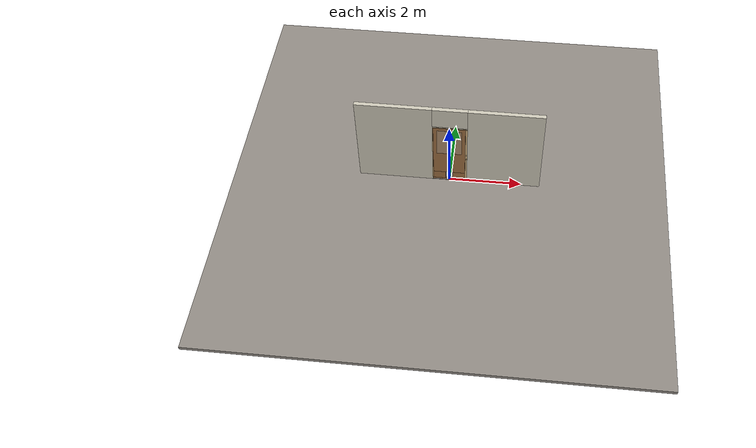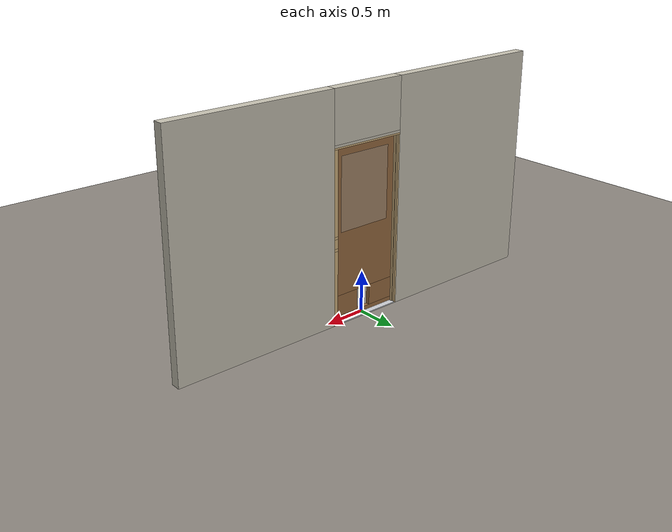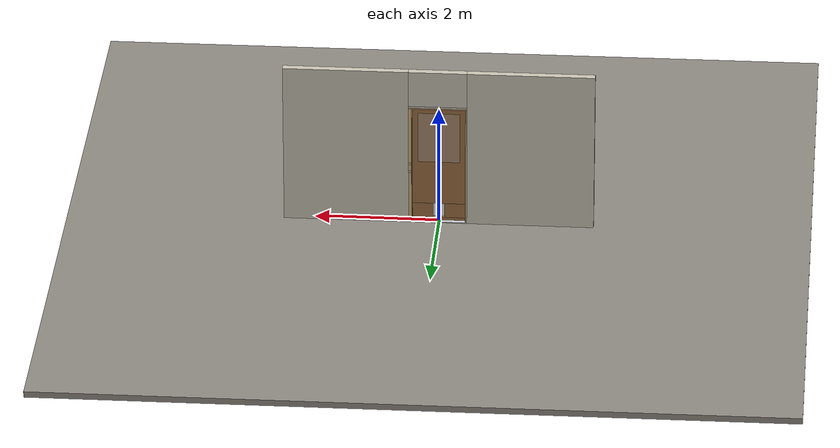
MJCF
<?xml version="1.0" ?>
<mujoco model="db0725_swing_single_minimal">
  <compiler angle="radian" meshdir="../../hardware" texturedir="../../textures" autolimits="true" inertiafromgeom="false"/>
  <option timestep="0.002" integrator="implicitfast" cone="elliptic" impratio="10" noslip_iterations="3">
    <flag multiccd="enable"/>
  </option>
  <size memory="16M"/>
  <default>
    <geom condim="4" solref="0.005 1" solimp="0.95 0.99 0.001"/>
    <joint solreflimit="0.005 1" solimplimit="0.95 0.99 0.001"/>
    <tendon solreflimit="0.005 1"/>
    <equality solref="0.002 1"/>
  </default>
  <visual>
    <headlight ambient="0.4 0.4 0.4" diffuse="0.7 0.7 0.7" specular="0.2 0.2 0.2"/>
    <quality shadowsize="4096"/>
    <map znear="0.01" zfar="60"/>
  </visual>
  <asset>
    <material name="mat_floor" rgba="0.55 0.53 0.5 1" specular="0.2" shininess="0.15" reflectance="0"/>
    <material name="mat_wall" rgba="0.78 0.76 0.7 1" specular="0.2" shininess="0.1" reflectance="0"/>
    <material name="mat_leaf" rgba="0.6 0.42 0.25 1" specular="0.2" shininess="0.6" reflectance="0"/>
    <material name="mat_glass" rgba="0.85 0.92 0.95 0.25" specular="0.2" shininess="0.95" reflectance="0.1"/>
    <material name="mat_hinge" rgba="0.65 0.66 0.68 1" specular="0.74" shininess="0.5" reflectance="0.36"/>
    <material name="mat_op_nickel_satin" rgba="0.72 0.7 0.66 1" specular="0.8" shininess="0.65" reflectance="0.4"/>
    <material name="mat_trim" rgba="0.85 0.66 0.3 1" specular="0.8" shininess="0.75" reflectance="0.4"/>
    <material name="mat_keypad" rgba="0.05 0.05 0.05 1" specular="0.38" shininess="0.3" reflectance="0.12"/>
    <material name="mat_key" rgba="0.85 0.85 0.82 1" specular="0.2" shininess="0.5" reflectance="0"/>
    <material name="mat_bolt" rgba="0.85 0.66 0.3 1" specular="0.8" shininess="0.75" reflectance="0.4"/>
    <material name="mat_deadbolt" rgba="0.85 0.66 0.3 1" specular="0.8" shininess="0.75" reflectance="0.4"/>
    <material name="mat_frame" rgba="0.82 0.7 0.5 1" specular="0.2" shininess="0.45" reflectance="0"/>
    <material name="mat_seal" rgba="0.1 0.1 0.1 1" specular="0.2" shininess="0.1" reflectance="0"/>
    <material name="mat_threshold" rgba="0.8 0.81 0.83 1" specular="0.8" shininess="0.6" reflectance="0.4"/>
    <material name="mat_numbers" rgba="0.05 0.05 0.05 1" specular="0.38" shininess="0.3" reflectance="0.12"/>
    <material name="mat_sidelite" rgba="0.85 0.92 0.95 0.25" specular="0.2" shininess="0.95" reflectance="0.1"/>
    <material name="mat_petframe" rgba="0.92 0.92 0.9 1" specular="0.2" shininess="0.6" reflectance="0"/>
    <material name="mat_petflap" rgba="0.85 0.9 0.95 0.45" specular="0.2" shininess="0.7" reflectance="0.1"/>
    <texture name="skybox" type="skybox" builtin="gradient" rgb1="0.6 0.7 0.85" rgb2="0.9 0.92 0.95" width="256" height="256"/>
  </asset>
  <worldbody>
    <light name="sun" pos="1.5 -2.5 4" dir="-0.3 0.5 -0.8" directional="true" diffuse="0.8 0.8 0.8" specular="0.3 0.3 0.3" castshadow="true"/>
    <light name="fill" pos="-1.5 2.5 3" dir="0.3 -0.5 -0.7" directional="true" diffuse="0.35 0.35 0.4" castshadow="false"/>
    <camera name="robot_view" pos="0 -2.513687 1.734312" xyaxes="1 0 0 0 0.26963 0.962964" fovy="52"/>
    <camera name="far_view" pos="0 2.570688 1.734312" xyaxes="-1 0 0 0 -0.26963 0.962964" fovy="52"/>
    <camera name="iso" pos="1.932062 -2.106937 2.141063" xyaxes="0.741536 0.670913 0 -0.242917 0.268487 0.932151" fovy="46"/>
    <camera name="detail_handle" pos="0.508 -0.7715 1.194" xyaxes="0.97561 0.219512 0 -0.070934 0.315262 0.94635" fovy="38"/>
    <geom name="floor" type="box" size="6 6 0.05" pos="0 0 -0.05" material="mat_floor" group="0" contype="1" conaffinity="1" friction="0.8 0.005 0.0001" density="2400"/>
    <geom name="wall_left" type="box" size="1.0225 0.0575 1.35" pos="-1.4775 0.0285 1.35" material="mat_wall" group="0" contype="1" conaffinity="1" friction="0.6 0.005 0.0001" density="800"/>
    <geom name="wall_right" type="box" size="1.0075 0.0575 1.35" pos="1.4925 0.0285 1.35" material="mat_wall" group="0" contype="1" conaffinity="1" friction="0.6 0.005 0.0001" density="800"/>
    <geom name="wall_header" type="box" size="0.47 0.0575 0.303" pos="0.015 0.0285 2.397" material="mat_wall" group="0" contype="1" conaffinity="1" friction="0.6 0.005 0.0001" density="800"/>
    <geom name="jamb_hinge" type="box" size="0.0095 0.0575 1.0225" pos="-0.4455 0.0285 1.0225" material="mat_frame" group="0" contype="1" conaffinity="1" friction="0.6 0.005 0.0001" density="400"/>
    <geom name="strike_914_wall_n" type="box" size="0.0245 0.039075 0.0167" pos="0.4605 0.046925 0.914" material="mat_frame" group="0" contype="1" conaffinity="1" friction="0.6 0.005 0.0001" density="400"/>
    <geom name="strike_914_wall_p" type="box" size="0.0245 0.008 0.0167" pos="0.4605 -0.01585 0.914" material="mat_frame" group="0" contype="1" conaffinity="1" friction="0.6 0.005 0.0001" density="400"/>
    <geom name="strike_914_ramp" type="box" size="0.0245 0.01649 0.0167" pos="0.465136 -0.028673 0.914" quat="0.977148 0 0 0.212558" material="mat_frame" group="0" contype="1" conaffinity="1" friction="0.12 0.005 0.0001" density="400"/>
    <geom name="strike_914_back" type="box" size="0.01615 0.00785 0.0167" pos="0.46885 0 0.914" material="mat_frame" group="0" contype="1" conaffinity="1" friction="0.6 0.005 0.0001" density="400"/>
    <geom name="strike_1054_wall_n" type="box" size="0.0245 0.03825 0.0155" pos="0.4605 0.04775 1.054" material="mat_frame" group="0" contype="1" conaffinity="1" friction="0.6 0.005 0.0001" density="400"/>
    <geom name="strike_1054_wall_p" type="box" size="0.0245 0.00975 0.0155" pos="0.4605 -0.01925 1.054" material="mat_frame" group="0" contype="1" conaffinity="1" friction="0.6 0.005 0.0001" density="400"/>
    <geom name="strike_1054_back" type="box" size="0.0098 0.0095 0.0155" pos="0.4752 0 1.054" material="mat_frame" group="0" contype="1" conaffinity="1" friction="0.6 0.005 0.0001" density="400"/>
    <geom name="jamb_strike_0" type="box" size="0.0245 0.0575 0.44865" pos="0.4605 0.0285 0.44865" material="mat_frame" group="0" contype="1" conaffinity="1" friction="0.6 0.005 0.0001" density="400"/>
    <geom name="jamb_strike_1" type="box" size="0.0245 0.0575 0.0539" pos="0.4605 0.0285 0.9846" material="mat_frame" group="0" contype="1" conaffinity="1" friction="0.6 0.005 0.0001" density="400"/>
    <geom name="jamb_strike_2" type="box" size="0.0245 0.0575 0.48775" pos="0.4605 0.0285 1.55725" material="mat_frame" group="0" contype="1" conaffinity="1" friction="0.6 0.005 0.0001" density="400"/>
    <geom name="jamb_head" type="box" size="0.47 0.0575 0.0095" pos="0.015 0.0285 2.0545" material="mat_frame" group="0" contype="1" conaffinity="1" friction="0.6 0.005 0.0001" density="400"/>
    <geom name="head_stud" type="box" size="0.47 0.0575 0.015" pos="0.015 0.0285 2.079" material="mat_wall" group="0" contype="1" conaffinity="1" friction="0.6 0.005 0.0001" density="500"/>
    <geom name="stop_hinge" type="box" size="0.0055 0.016 1.0225" pos="-0.4305 0.0385 1.0225" material="mat_frame" group="0" contype="1" conaffinity="1" friction="0.6 0.005 0.0001" density="400"/>
    <geom name="stop_strike" type="box" size="0.0055 0.016 1.0225" pos="0.4305 0.0385 1.0225" material="mat_frame" group="0" contype="1" conaffinity="1" friction="0.6 0.005 0.0001" density="400"/>
    <geom name="stop_head" type="box" size="0.436 0.016 0.0055" pos="0 0.0385 2.0395" material="mat_frame" group="0" contype="1" conaffinity="1" friction="0.6 0.005 0.0001" density="400"/>
    <geom name="threshold" type="box" size="0.455 0.0575 0.0065" pos="0 0.0285 0.0065" material="mat_threshold" group="0" contype="1" conaffinity="1" friction="0.5 0.005 0.0001" density="2700"/>
    <site name="approach_point" pos="0 -1.5 0" quat="1 0 0 0" size="0.05" rgba="0.2 0.9 0.2 0.5" group="4"/>
    <site name="goal_point" pos="0 1.5 0" quat="1 0 0 0" size="0.05" rgba="0.2 0.9 0.2 0.5" group="4"/>
    <site name="door_plane_center" pos="0 0 1.0225" quat="1 0 0 0" size="0.02" rgba="0.2 0.9 0.2 0.5" group="4"/>
    <body name="leaf" pos="-0.436 0 0">
      <inertial pos="0.435 0 1.051906" mass="46.373021" quat="0.5 -0.5 -0.5 -0.5" diaginertia="2.965539597 15.357239056 18.307814737"/>
      <joint name="leaf_hinge" type="hinge" axis="0 0 -1" pos="0.003 -0.029 0" limited="true" range="0 1.745329" solreflimit="0.02 1" damping="0.254501" frictionloss="6.629312" armature="0.02"/>
      <geom name="leaf_slab_below" type="box" size="0.432 0.022 0.0245" pos="0.435 0 0.0415" material="mat_leaf" group="0" contype="1" conaffinity="1" friction="0.3 0.005 0.0001" density="1"/>
      <geom name="leaf_slab_above" type="box" size="0.432 0.022 0.8615" pos="0.435 0 1.1795" material="mat_leaf" group="0" contype="1" conaffinity="1" friction="0.3 0.005 0.0001" density="1"/>
      <geom name="leaf_slab_left" type="box" size="0.1705 0.022 0.126" pos="0.1735 0 0.192" material="mat_leaf" group="0" contype="1" conaffinity="1" friction="0.3 0.005 0.0001" density="1"/>
      <geom name="leaf_slab_right" type="box" size="0.1705 0.022 0.126" pos="0.6965 0 0.192" material="mat_leaf" group="0" contype="1" conaffinity="1" friction="0.3 0.005 0.0001" density="1"/>
      <geom name="leaf_glass_0" type="box" size="0.33696 0.0228 0.43516" pos="0.435 0 1.50464" material="mat_glass" group="1" contype="0" conaffinity="0" density="1"/>
      <site name="leaf_edge_mid" pos="0.867 0 1.012" quat="1 0 0 0" size="0.02" rgba="0.2 0.9 0.2 0.5" group="4"/>
      <body name="leaf_handle" pos="0.797 0 0.914">
        <inertial pos="0 0 0" mass="0.01" quat="1 0 0 0" diaginertia="0.000001 0.000001 0.000001"/>
        <joint name="leaf_handle_hinge" type="hinge" axis="0 -1 0" limited="true" range="0 0.87" damping="0.141426" frictionloss="0.048" stiffness="0.5" springref="-0.5" armature="0.01"/>
      </body>
      <body name="leaf_latch_bolt" pos="0.867 0 0.914">
        <inertial pos="-0.00865 0 0" mass="0.041419" quat="0.92388 -0.382683 0 0" diaginertia="0.000000798 0.000005598 0.000005598"/>
        <joint name="leaf_latch_bolt_slide" type="slide" axis="-1 0 0" limited="true" range="0 0.0127" damping="2" frictionloss="0.3" stiffness="300" springref="-0.008333" armature="0.1"/>
        <geom name="leaf_latch_bolt_capsule" type="capsule" size="0.00635 0.015" pos="-0.00865 0 0" quat="0.707107 0 0.707107 0" material="mat_bolt" group="0" contype="1" conaffinity="1" friction="0.2 0.005 0.0001" density="8500"/>
      </body>
    </body>
  </worldbody>
  <tendon>
    <fixed name="leaf_latch_bolt_coupling" limited="true" range="0 10">
      <joint joint="leaf_latch_bolt_slide" coef="1"/>
      <joint joint="leaf_handle_hinge" coef="-0.015679"/>
    </fixed>
  </tendon>
  <sensor>
    <jointpos name="leaf_hinge_pos" joint="leaf_hinge"/>
    <jointvel name="leaf_hinge_vel" joint="leaf_hinge"/>
    <jointpos name="leaf_handle_hinge_pos" joint="leaf_handle_hinge"/>
    <jointvel name="leaf_handle_hinge_vel" joint="leaf_handle_hinge"/>
    <jointpos name="leaf_latch_bolt_slide_pos" joint="leaf_latch_bolt_slide"/>
    <jointvel name="leaf_latch_bolt_slide_vel" joint="leaf_latch_bolt_slide"/>
  </sensor>
</mujoco>
